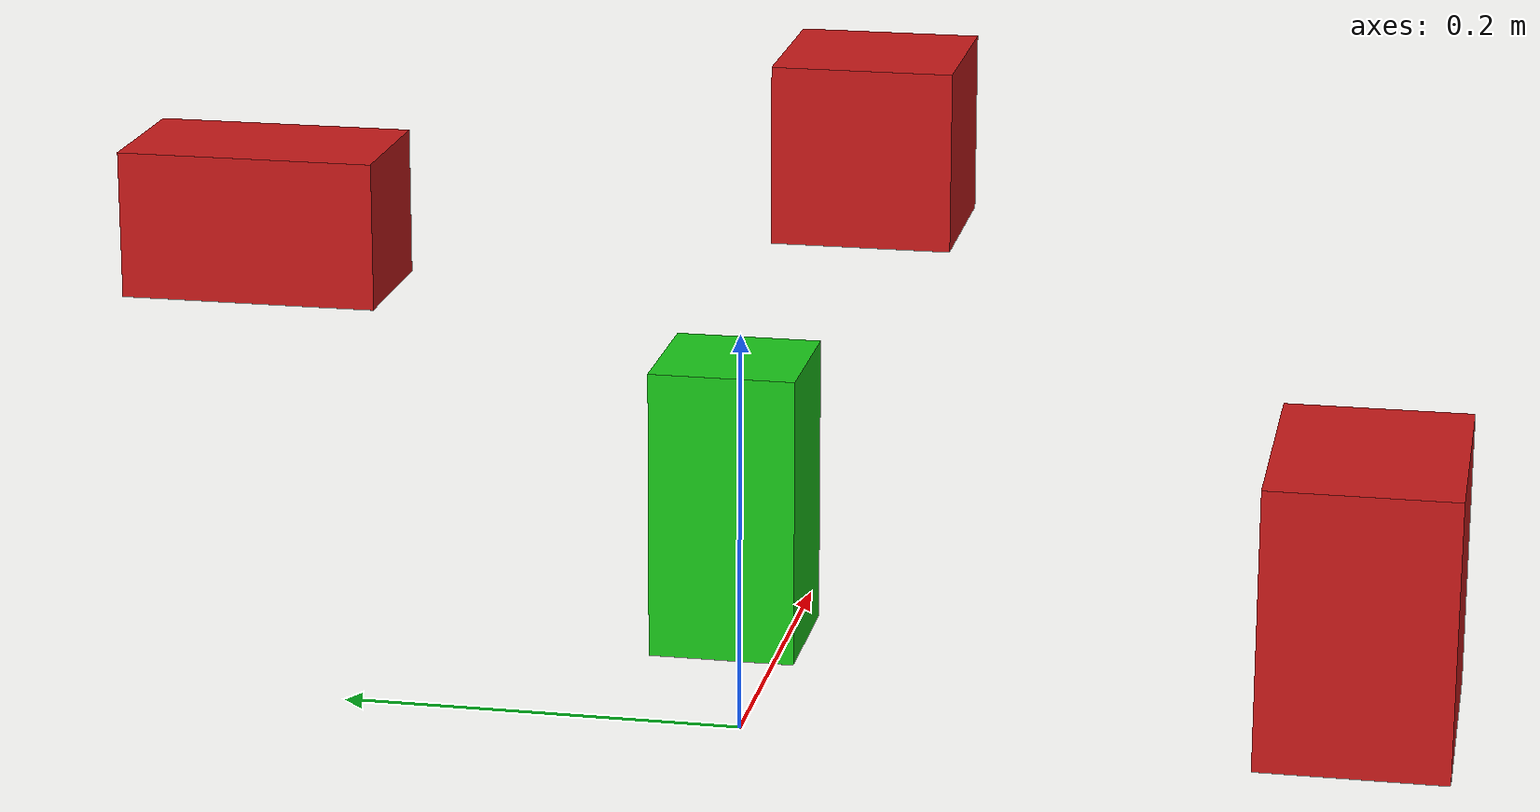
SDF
<?xml version="1.0" ?>
<sdf version="1.7">
  <world name="ur3e_haptic_world">

    <!-- Sky and lighting settings from official empty.sdf -->
    <scene>
      <ambient>0.4 0.4 0.4 1</ambient>
      <background>0.7 0.7 0.7 1</background>
      <shadows>1</shadows>
    </scene>

    <!-- Physics parameters -->
    <physics name="default_physics" type="ignored">
      <max_step_size>0.001</max_step_size>
      <real_time_factor>1</real_time_factor>
      <real_time_update_rate>1000</real_time_update_rate>
    </physics>

    <!-- Gravity -->
    <gravity>0 0 -9.81</gravity>

    <!-- GUI -->
    <gui fullscreen='0'>
      <camera name='user_camera'>
        <pose>6 0 3 0 0 0</pose>
      </camera>
    </gui>

    <!-- Light source -->
    <light name="sun" type="directional">
      <pose>0 0 10 0 0 0</pose>
      <diffuse>0.8 0.8 0.8 1</diffuse>
      <specular>0.2 0.2 0.2 1</specular>
      <direction>-0.5 0.1 -0.9</direction>
      <cast_shadows>true</cast_shadows>
    </light>

    <!--                      ADD OBSTACLE                         -->

    <!-- Scene objects (pose/size should match config/obstacles.yaml) -->

    <!-- box1 (obstacle) -->
    <model name="obstacle_box1">
      <static>true</static>
      <pose>0.40 0 0.20 0 0 0</pose> <!-- xyz rpy -->

      <link name="link">
        <collision name="collision">
          <geometry>
            <box>
              <size>0.1 0.1 0.1</size>
            </box>
          </geometry>
        </collision>

        <visual name="visual">
          <geometry>
            <box>
              <size>0.1 0.1 0.1</size>
            </box>
          </geometry>
          <material>
            <ambient>0.8 0.1 0.1 1</ambient>
            <diffuse>0.8 0.1 0.1 1</diffuse>
          </material>
        </visual>
      </link>
    </model>

    <!-- box2 (obstacle) -->
    <model name="obstacle_box2">
      <static>true</static>
      <pose>-0.25 -0.31 0.18 0 0 0</pose> <!-- xyz rpy -->

      <link name="link">
        <collision name="collision">
          <geometry>
            <box>
              <size>0.12 0.08 0.12</size>
            </box>
          </geometry>
        </collision>

        <visual name="visual">
          <geometry>
            <box>
              <size>0.12 0.08 0.12</size>
            </box>
          </geometry>
          <material>
            <ambient>0.8 0.1 0.1 1</ambient>
            <diffuse>0.8 0.1 0.1 1</diffuse>
          </material>
        </visual>
      </link>
    </model>

    <!-- box3 (obstacle) -->
    <model name="obstacle_box3">
      <static>true</static>
      <pose>0.25 0.31 0.18 0 0 0</pose> <!-- xyz rpy -->

      <link name="link">
        <collision name="collision">
          <geometry>
            <box>
              <size>0.08 0.14 0.08</size>
            </box>
          </geometry>
        </collision>

        <visual name="visual">
          <geometry>
            <box>
              <size>0.08 0.14 0.08</size>
            </box>
          </geometry>
          <material>
            <ambient>0.8 0.1 0.1 1</ambient>
            <diffuse>0.8 0.1 0.1 1</diffuse>
          </material>
        </visual>
      </link>
    </model>

    <!-- target1 (target object, colored green) -->
    <model name="target_box1">
      <static>true</static>
      <pose>-0.30 -0.055 0.22 0 0 0</pose> <!-- xyz rpy -->

      <link name="link">
        <collision name="collision">
          <geometry>
            <box>
              <size>0.06 0.06 0.12</size>
            </box>
          </geometry>
        </collision>

        <visual name="visual">
          <geometry>
            <box>
              <size>0.06 0.06 0.12</size>
            </box>
          </geometry>
          <material>
            <ambient>0.1 0.8 0.1 1</ambient>
            <diffuse>0.1 0.8 0.1 1</diffuse>
          </material>
        </visual>
      </link>
    </model>

  </world>
</sdf>
